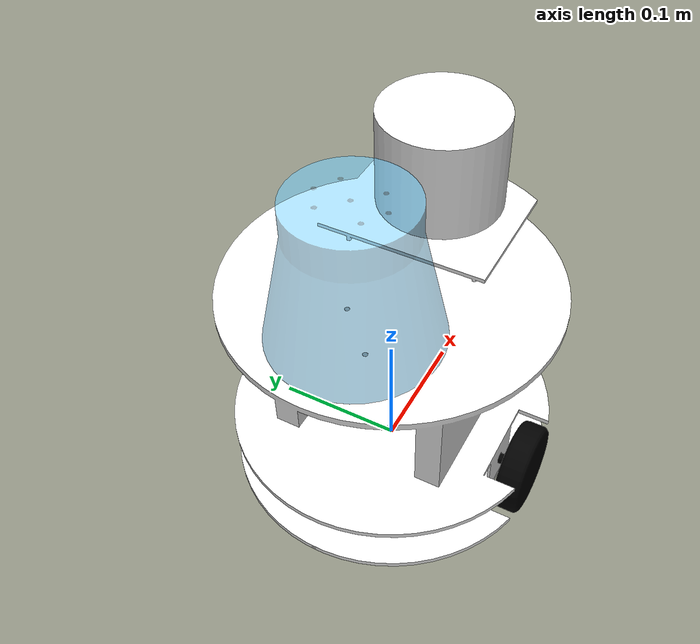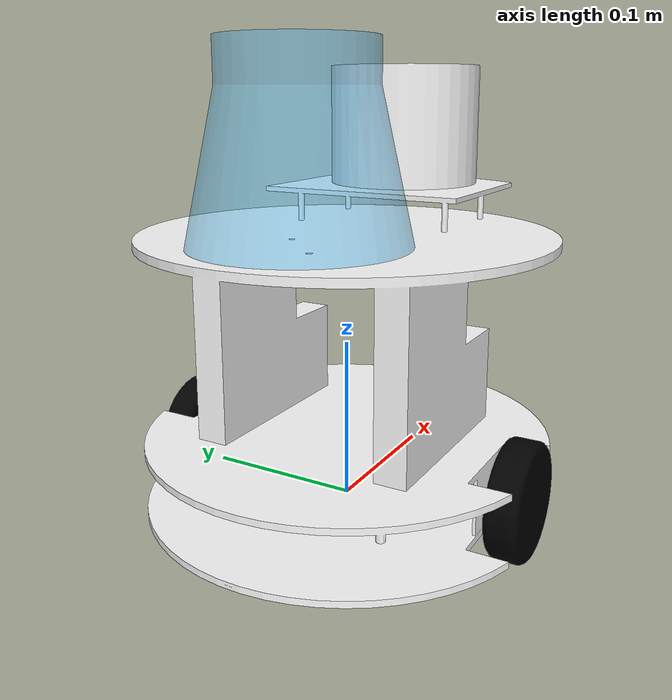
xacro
<?xml version="1.0"?>

<robot name="fratomo_base" xmlns:xacro="http://ros.org/wiki/xacro">
<xacro:include filename="$(find fratomo_pro_description)/urdf/fratomo_base_macro.xacro" />
<xacro:include filename="$(find fratomo_pro_description)/urdf/fratomo_pantilt_macro.xacro" />

    <xacro:property name="LIDAR" value="True"/>
    <xacro:property name="CAMERA" value="False"/>
    <xacro:property name="DEPTH" value="True"/>

    <!-- Diff Drive Robot Base  -->
    <xacro:fratomo_base />
    <!-- Pan Tilt head  -->
    <xacro:fratomo_pantilt parent="base_link"/>

    <!-- Head CAMERA Sensor -->
    <xacro:if value="${CAMERA}" >
        <!--Gazebo y-right/z-up camera frame is inconsistent with rviz/opencv x-right/y-down frame/-->
        <joint name="camViewFix" type="fixed">
            <parent link="camera"/>
            <child link="camera_view"/>
            <origin rpy="0 0 0"  xyz="0.0 0.0 0.0 "/>
        </joint>
        <link name="camera_view"/>
        <gazebo reference="camera_view">
            <sensor type="camera" name="camera1">
                <update_rate>30.0</update_rate>
                <camera name="head">
                <horizontal_fov>1.3962634</horizontal_fov>
                <image>
                  <width>800</width>
                  <height>800</height>
                  <format>R8G8B8</format>
                </image>
                <clip>
                  <near>0.02</near>
                  <far>300</far>
                </clip>
                <noise>
                  <type>gaussian</type>
                  <mean>0.0</mean>
                  <stddev>0.007</stddev>
                </noise>
                </camera>

                <plugin name="camera_controller" filename="libgazebo_ros_camera.so">
                <alwaysOn>true</alwaysOn>
                <updateRate>0.0</updateRate>
                <cameraName>/headCam</cameraName>
                <imageTopicName>image_raw</imageTopicName>
                <cameraInfoTopicName>camera_info</cameraInfoTopicName>
                <frameName>camera_view</frameName>
                <hackBaseline>0.07</hackBaseline>
                <distortionK1>0.0</distortionK1>
                <distortionK2>0.0</distortionK2>
                <distortionK3>0.0</distortionK3>
                <distortionT1>0.0</distortionT1>
                <distortionT2>0.0</distortionT2>
                </plugin>
            </sensor>
        </gazebo>
    </xacro:if>

    <!-- LIDAR Sensor -->
     <xacro:if value="${LIDAR}" >

        <!--publish laser frame on the base -->
        <joint name="laser_joint" type="fixed">
            <parent link="base_link"/>
            <child link="laser_frame"/>
            <origin rpy="0 ${M_PI} ${M_PI}"  xyz="0.075 0.0 0.265 "/>
        </joint>
        <link name="laser_frame"/>

        <gazebo reference="laser_frame">
            <sensor type="ray" name="head_hokuyo_sensor">
                <pose>0 0 0 0 0 0</pose>
                <visualize>false</visualize>
                <update_rate>40</update_rate>
                <ray>
                    <scan>
                      <horizontal>
                        <samples>720</samples>
                        <resolution>1</resolution>
                        <min_angle>-${M_PI} </min_angle>
                        <max_angle>${M_PI} </max_angle>
                      </horizontal>
                    </scan>
                    <range>
                      <min>0.8</min>
                      <max>30.0</max>
                      <resolution>0.01</resolution>
                    </range>
                    <noise>
                      <type>gaussian</type>
                      <mean>0.0</mean>
                      <stddev>0.01</stddev>
                    </noise>
                </ray>
                <plugin name="gazebo_ros_head_hokuyo_controller" filename="libgazebo_ros_laser.so">
                    <topicName>/laser/scan</topicName>
                    <frameName>laser_frame</frameName>
                </plugin>
            </sensor>
        </gazebo>
    </xacro:if>

 <!-- RGBD Sensor -->
    <xacro:if value="${DEPTH}" >

        <!--publish rgbd frame on the base -->
        <joint name="rgbd_joint" type="fixed">
            <parent link="camera"/>
            <child link="rgbd_frame"/>
            <origin rpy="0 0 0"  xyz=" 0 0 0"/>
        </joint>
        <link name="rgbd_frame"/>
        <!-- Fixing opitcal frame problem -->
        <joint name="rgbd__optical_joint" type="fixed">
            <parent link="rgbd_frame"/>
            <child link="rgbd_optical_frame"/>
            <origin rpy="-${M_PI_2} 0 -${M_PI_2} "  xyz=" 0 0 0"/>
        </joint>
        <link name="rgbd_optical_frame"/>

        <gazebo reference="rgbd_frame">
         <sensor type="depth" name="$depth_camera">
            <always_on>true</always_on>
            <update_rate>30.0</update_rate>
            <camera>
              <horizontal_fov>1.3962634</horizontal_fov>
              <image>
                <format>BGR8</format>
                <width>640</width>
                <height>480</height>
              </image>
              <clip>
                <near>0.01</near>
                <far>100</far>
              </clip>
            </camera>
            <plugin name="depth_camera_plugin" filename="libgazebo_ros_openni_kinect.so">
              <alwaysOn>true</alwaysOn>
              <baseline>0.11</baseline>
              <updateRate>30.0</updateRate>
              <cameraName>depth_camera</cameraName>
              <imageTopicName>depth_camera/image_raw</imageTopicName>
              <cameraInfoTopicName>depth_camera/camera_info</cameraInfoTopicName>
              <depthImageTopicName>depth/disparity</depthImageTopicName>
              <depthImageCameraInfoTopicName>depth/camera_info</depthImageCameraInfoTopicName>
              <pointCloudTopicName>depth/points</pointCloudTopicName>
              <frameName>rgbd_optical_frame</frameName>
              <pointCloudCutoff>0.5</pointCloudCutoff>
              <distortionK1>0.0</distortionK1>
              <distortionK2>0.0</distortionK2>
              <distortionK3>0.0</distortionK3>
              <distortionT1>0.0</distortionT1>
              <distortionT2>0.0</distortionT2>
            </plugin>
          </sensor>
        </gazebo>
    </xacro:if>

</robot>

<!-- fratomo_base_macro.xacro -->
<robot name="fratomo_base_macro" xmlns:xacro="http://www.ros.org/wiki/xacro">

  <!--All units in m-kg-s-radians unit system -->
  <xacro:property name="M_PI" value="3.1415926535897931" />
  <xacro:property name="M_PI_2" value="1.570796327" />
  <xacro:property name="DEG_TO_RAD" value="0.017453293" />

	<!--Material Definition-->
	<material name="Black">
	  <color rgba="0.0 0.0 0.0 1.0"/>
	</material>

  <material name="Red">
  	<color rgba="0.8 0.0 0.0 1.0"/>
  </material>

  <material name="White">
    <color rgba="1.0 1.0 1.0 1.0"/>
  </material>

  <material name="Blue">
    <color rgba="0.0 0.0 0.8 1.0"/>
  </material>

  <!-- Base properties -->
	<xacro:property name="base_height" value="0.25" />
  <xacro:property name="base_radius" value="0.113" />
  <xacro:property name="base_mass" value="5" />
  <xacro:property name="wheel_mass" value="2.5" />
  <xacro:property name="wheel_radius" value="0.0375" />

  <xacro:macro name="cylinder_inertia" params="m r h">
    <inertia  ixx="${m*(3*r*r+h*h)/12}" ixy = "0" ixz = "0"
              iyy="${m*(3*r*r+h*h)/12}" iyz = "0"
              izz="${m*r*r/2}" />
  </xacro:macro>

  <!-- WHOLE BASE MACRO-->
  <xacro:macro name="fratomo_base" > <!--fb : front, back ; lr: left, right -->

      <!--Actual body/chassis of the robot-->
    <link name="base_link">
      <inertial>
          <inertia ixx="1.0" ixy="0.0" ixz="0.0" iyy="1.0" iyz="0.0" izz="1.0"/>
        <mass value="${base_mass}" />
        <origin xyz="0 0 0" />
        <cylinder_inertia  m="${base_mass}" r="${base_radius}" h="${base_height}" />
      </inertial>
      <visual>
        <geometry>
          <mesh filename="package://fratomo_pro_description/meshes/base.stl" scale="0.001 0.001 0.001 "/>
        </geometry>
        <material name="White"/>
        <origin rpy="0 0 1.57075" xyz="0 0 0"/>
      </visual>
      <collision>
        <origin xyz="0 0 0" rpy="0 0 0 " />
        <geometry>
          <mesh filename="package://fratomo_pro_description/meshes/base.stl" scale="0.001 0.001 0.001 "/>
        </geometry>
        <origin rpy="0 0 1.57075" xyz="0 0 0"/>
      </collision>
    </link>

    <link name="caster_front_link">
      <visual>
        <geometry>
          <mesh filename="package://fratomo_pro_description/meshes/casterWheel.stl" scale="0.001 0.001 0.001 "/>
        </geometry>
        <material name="Black"/>
        <origin rpy="0 0 0" xyz="0 0 0"/>
      </visual>
      <collision>
        <geometry>
          <mesh filename="package://fratomo_pro_description/meshes/casterWheel.stl" scale="0.001 0.001 0.001 "/>
        </geometry>
        <origin rpy="0 0 0" xyz="0 0 0"/>
      </collision>
      <inertial>
        <mass value="0.5"/>
        <origin xyz="0 0 0" />
          <inertia  ixx="0.001" ixy="0.0" ixz="0.0"
                    iyy="0.001" iyz="0.0"
                    izz="0.001" />
      </inertial>
    </link>

    <link name="caster_rear_link">
      <visual>
        <geometry>
          <mesh filename="package://fratomo_pro_description/meshes/casterWheel.stl" scale="0.001 0.001 0.001 "/>
        </geometry>
        <material name="Black"/>
        <origin rpy="0 0 0" xyz="0 0 0"/>
      </visual>
      <collision>
        <geometry>
          <mesh filename="package://fratomo_pro_description/meshes/casterWheel.stl" scale="0.001 0.001 0.001 "/>
        </geometry>
        <origin rpy="0 0 0" xyz="0 0 0"/>
      </collision>
      <inertial>
        <mass value="0.5"/>
        <origin xyz="0 0 0" />
          <inertia  ixx="0.001" ixy="0.0" ixz="0.0"
                    iyy="0.001" iyz="0.0"
                    izz="0.001" />
      </inertial>
    </link>

    <link name="left_wheel_link">
      <visual>
        <geometry>
          <mesh filename="package://fratomo_pro_description/meshes/wheel.stl" scale="0.001 0.001 0.001 "/>
        </geometry>
        <material name="Black"/>
        <origin rpy="0 0 0" xyz="0 0 0"/>
      </visual>
      <collision>
        <geometry>
          <mesh filename="package://fratomo_pro_description/meshes/wheel.stl" scale="0.001 0.001 0.001 "/>
        </geometry>
        <origin rpy="0 0 0" xyz="0 0 0"/>
      </collision>
      <inertial>
        <mass value="${wheel_mass}" />
        <origin xyz="0 0 0" />
        <inertia ixx="0.001" ixy="0.0" ixz="0.0"
               iyy="0.001" iyz="0.0"
               izz="0.001" />
      </inertial>
    </link>

    <link name="right_wheel_link">
      <visual>
        <geometry>
          <mesh filename="package://fratomo_pro_description/meshes/wheel.stl" scale="0.001 0.001 0.001 "/>
        </geometry>
        <material name="Black"/>
        <origin rpy="0 0 0" xyz="0 0 0"/>
      </visual>
      <collision>
        <geometry>
          <mesh filename="package://fratomo_pro_description/meshes/wheel.stl" scale="0.001 0.001 0.001 "/>
        </geometry>
        <origin rpy="0 0 0" xyz="0 0 0"/>
      </collision>
      <inertial>
        <mass value="${wheel_mass}" />
        <origin xyz="0 0 0" />
        <inertia ixx="0.001" ixy="0.0" ixz="0.0"
               iyy="0.001" iyz="0.0"
               izz="0.001" />
      </inertial>
    </link>

    <joint name="caster_front_joint" type="fixed" >
      <parent link="base_link" />
      <child link="caster_front_link" />
       <origin rpy="0 0 0" xyz="0.1 0 0.002"/>
    </joint>

     <joint name="caster_frear_joint" type="fixed" >
      <parent link="base_link" />
      <child link="caster_rear_link" />
       <origin rpy="0 0 0" xyz="-0.1 0 0.002"/>
    </joint>

    <joint name="left_wheel_joint" type="continuous">
      <parent link="base_link"/>
      <child link="left_wheel_link"/>
      <origin rpy="${M_PI_2} 0 0" xyz="0 0.113 0.023"/>
      <axis xyz="0 0 -1" rpy="0 0 0" />
      <limit effort="100" velocity="100"/>
      <joint_properties damping="0.5" friction="0.01"/>
    </joint>

    <joint name="right_wheel_joint" type="continuous">
      <parent link="base_link"/>
      <child link="right_wheel_link"/>
      <origin rpy="${-M_PI_2} 0 0" xyz="0 -0.113 0.023"/>
      <axis xyz="0 0 1" rpy="0 0 0" />
      <limit effort="100" velocity="100"/>
      <joint_properties damping="0.5" friction="0.01"/>
    </joint>

    <gazebo reference="left_wheel_link">
      <mu1 value="1.0"/>
      <mu2 value="1.0"/>
      <kp  value="1000000.0" />
      <kd  value="1.0" />
      <fdir1 value="1 0 0"/>
      <material>Gazebo/Black</material>
      <turnGravityOff>false</turnGravityOff>
    </gazebo>

     <gazebo reference="right_wheel_link">
      <mu1 value="1.0"/>
      <mu2 value="1.0"/>
      <kp  value="1000000.0" />
      <kd  value="1.0" />
      <fdir1 value="1 0 0"/>
      <material>Gazebo/Black</material>
      <turnGravityOff>false</turnGravityOff>
    </gazebo>

    <gazebo reference="caster_rear_link">
      <material>Gazebo/Grey</material>
    </gazebo>

    <gazebo reference="caster_front_link">
      <material>Gazebo/Grey</material>
    </gazebo>

    <!-- Transmission is important to link the joints and the controller -->
    <transmission name="left_wheel_joint_trans">
      <type>transmission_interface/SimpleTransmission</type>
      <joint name="left_wheel_joint" />
      <actuator name="left_wheel_joint_motor">
        <hardwareInterface>EffortJointInterface</hardwareInterface>
        <mechanicalReduction>1</mechanicalReduction>
      </actuator>
    </transmission>

    <transmission name="right_wheel_joint_trans">
      <type>transmission_interface/SimpleTransmission</type>
      <joint name="right_wheel_joint" />
      <actuator name="right_wheel_joint_motor">
        <hardwareInterface>EffortJointInterface</hardwareInterface>
        <mechanicalReduction>1</mechanicalReduction>
      </actuator>
    </transmission>

     <!-- Differential drive controller  -->
  <gazebo>
    <plugin name="differential_drive_controller" filename="libgazebo_ros_diff_drive.so">
      <legacyMode>true</legacyMode>
      <rosDebugLevel>Debug</rosDebugLevel>
      <publishWheelTF>true</publishWheelTF>
      <robotNamespace>/</robotNamespace>
      <publishTf>1</publishTf>
      <publishWheelJointState>true</publishWheelJointState>
      <alwaysOn>true</alwaysOn>
      <updateRate>100.0</updateRate>
      <leftJoint>left_wheel_joint</leftJoint>
      <rightJoint>right_wheel_joint</rightJoint>
      <wheelSeparation>${2*base_radius}</wheelSeparation>
      <wheelDiameter>${2*wheel_radius}</wheelDiameter>
      <broadcastTF>1</broadcastTF>
      <wheelTorque>30</wheelTorque>
      <wheelAcceleration>1.8</wheelAcceleration>
      <commandTopic>cmd_vel</commandTopic>
      <odometryFrame>odom</odometryFrame>
      <odometryTopic>odom</odometryTopic>
      <robotBaseFrame>base_link</robotBaseFrame>
    </plugin>
  </gazebo>

   </xacro:macro>
</robot>

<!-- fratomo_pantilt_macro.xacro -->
<robot name="fratomo_pantilt_macro" xmlns:xacro="http://www.ros.org/wiki/xacro">

  <!--All units in m-kg-s-radians unit system -->
  <xacro:property name="M_PI" value="3.1415926535897931" />
  <xacro:property name="M_PI_2" value="1.570796327" />
  <xacro:property name="DEG_TO_RAD" value="0.017453293" />
  <!-- propertys for joint controllers-->
  <xacro:property name="safety_controller_k_pos" value="100" />
  <xacro:property name="safety_controller_k_vel" value="2" />
  <xacro:property name="joint_damping" value="0.5" />
  <xacro:property name="max_effort" value="300"/>
  <xacro:property name="max_velocity" value="10"/>

	<!--Material Definition-->

   <material name="gray">
    <color rgba="0.5 0.5 0.5 0.5"/>
  </material>

  <material name="black">
    <color rgba="0 0 0 0.5"/>
  </material>

  <material name="purple">
    <color rgba="0.4 0.8 1 0.5"/>
  </material>

  <material name="white">
    <color rgba="1 1 1 0.5"/>
  </material>

  <material name="blue">
    <color rgba="0 0 0.8 0.5"/>
  </material>

  <!--Little helper macros to define the inertia matrix needed for links.-->
  <!--Cuboid-->
  <xacro:macro name="cuboid_inertia" params="width height length mass">
    <inertia ixx="${mass * (height * height + length * length) / 12}"
             iyy="${mass * (width * width + length * length) / 12}"
             izz="${mass * (width * width + height * height) / 12}"
             ixy="0" iyz="0" ixz="0"/>
  </xacro:macro>

  <!--Cylinder: length is along the z-axis! -->
  <xacro:macro name="cylinder_inertia" params="radius length mass">
    <inertia ixx="${mass * (3 * radius * radius + length * length) / 12}"
             izz="${mass * radius* radius / 2}"
             iyy="${mass * (3 * radius * radius + length * length) / 12}"
             ixy="0" iyz="0" ixz="0"/>
  </xacro:macro>
  <!--Trasmission macro for gazebo and controllers -->
  <xacro:macro name="transmission_block" params="joint_name">
      <transmission name="${joint_name}_tran1">
        <type>transmission_interface/SimpleTransmission</type>
        <joint name="${joint_name}">
          <hardwareInterface>hardware_interface/PositionJointInterface</hardwareInterface>
        </joint>
        <actuator name="${joint_name}_motor">
          <hardwareInterface>hardware_interface/PositionJointInterface</hardwareInterface>
          <mechanicalReduction>1</mechanicalReduction>
        </actuator>
      </transmission>
     </xacro:macro>

  <!-- WHOLE TORSO MACRO-->
  <xacro:macro name="fratomo_pantilt" params="parent" >

   <!-- links -->
    <link name="turnable">
      <visual>
        <geometry>
          <mesh filename="package://fratomo_pro_description/meshes/turnable.stl" scale="0.001 0.001 0.001 "/>
        </geometry>
        <material name="purple"/>
        <origin rpy="0 0 0" xyz="0 0 0"/>
      </visual>
      <collision>
        <geometry>
          <mesh filename="package://fratomo_pro_description/meshes/turnable.stl" scale="0.001 0.001 0.001 "/>
        </geometry>
        <origin rpy="0 0 0" xyz="0 0 0"/>
      </collision>
      <inertial>
        <xacro:cylinder_inertia radius="0.05" length="0.11" mass="1"/>
        <mass value="1" />
        <origin xyz="0 0 0.055" />
      </inertial>
    </link>

<!-- dummy camera, ee links -->
    <link name="camera">

    </link>

<!-- joints -->
    <joint name="base_to_turnable" type="fixed">
        <parent link="${parent}"/>
        <child link="turnable"/>
        <origin xyz="-0.052 0 0.169"/>
    </joint>

    <joint name="turnable_to_camera" type="fixed">
        <parent link="turnable"/>
        <child link="camera"/>
        <origin rpy="0 0 0"  xyz="0.0 0.0 0.15"/>
    </joint>

    <!--xacro:transmission_block joint_name="turntable_to_camera"/-->

    <gazebo reference="turnable">
      <material>Gazebo/Blue</material>
    </gazebo>

  </xacro:macro>
</robot>
